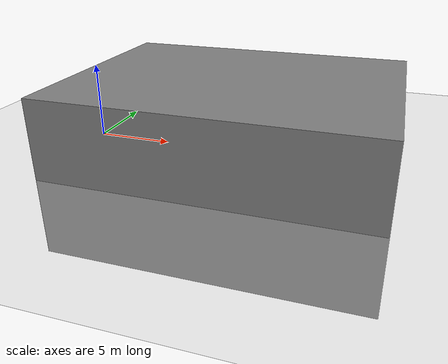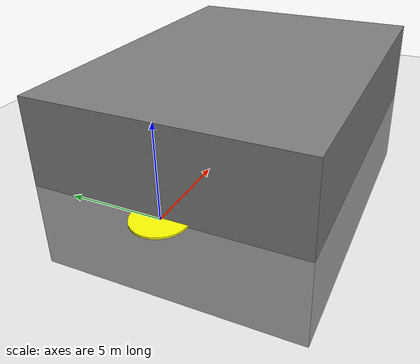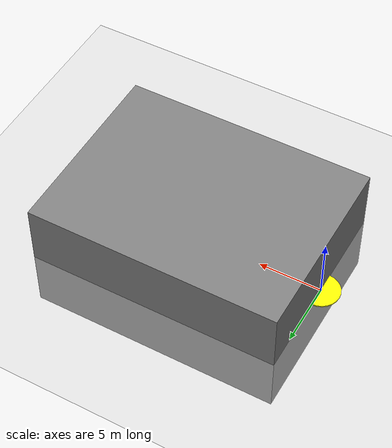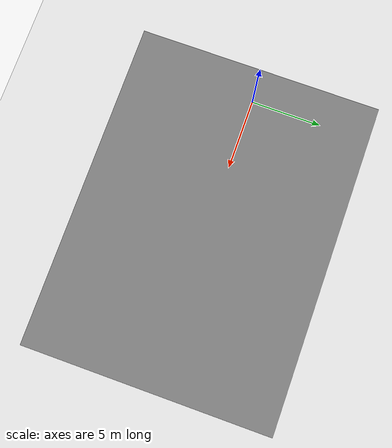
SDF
<?xml version="1.0"?>
<sdf version="1.6">
  <world name="drone_inspection_arena">

    <!-- Physics -->
    <physics type="ode">
      <real_time_update_rate>1000</real_time_update_rate>
      <max_step_size>0.001</max_step_size>
    </physics>

    <!-- Scene -->
    <scene>
      <ambient>0.4 0.4 0.4 1</ambient>
      <background>0.7 0.7 0.7 1</background>
      <shadows>true</shadows>
    </scene>

    <!-- Ground Plane -->
    <include>
      <uri>model://ground_plane</uri>
    </include>

    <!-- Sun -->
    <include>
      <uri>model://sun</uri>
    </include>

    <!-- Inspection Building -->
    <model name="inspection_building">
      <static>true</static>
      <pose>10 0 0 0 0 0</pose>
      <link name="building_link">
        <collision name="building_collision">
          <geometry>
            <box>
              <size>20 15 10</size>
            </box>
          </geometry>
        </collision>
        <visual name="building_visual">
          <geometry>
            <box>
              <size>20 15 10</size>
            </box>
          </geometry>
          <material>
            <ambient>0.5 0.5 0.5 1</ambient>
            <diffuse>0.5 0.5 0.5 1</diffuse>
          </material>
        </visual>
      </link>
    </model>

    <!-- Landing Pad -->
    <model name="landing_pad">
      <static>true</static>
      <pose>0 0 0.05 0 0 0</pose>
      <link name="pad_link">
        <collision name="pad_collision">
          <geometry>
            <cylinder>
              <radius>1.5</radius>
              <length>0.1</length>
            </cylinder>
          </geometry>
        </collision>
        <visual name="pad_visual">
          <geometry>
            <cylinder>
              <radius>1.5</radius>
              <length>0.1</length>
            </cylinder>
          </geometry>
          <material>
            <ambient>1 1 0 1</ambient>
            <diffuse>1 1 0 1</diffuse>
          </material>
        </visual>
      </link>
    </model>

    <!-- Obstacles -->
    <model name="obstacle_1">
      <static>true</static>
      <pose>5 3 2 0 0 0</pose>
      <link name="obstacle_link">
        <collision name="obstacle_collision">
          <geometry>
            <box>
              <size>2 2 4</size>
            </box>
          </geometry>
        </collision>
        <visual name="obstacle_visual">
          <geometry>
            <box>
              <size>2 2 4</size>
            </box>
          </geometry>
          <material>
            <ambient>1 0 0 1</ambient>
            <diffuse>1 0 0 1</diffuse>
          </material>
        </visual>
      </link>
    </model>

    <model name="obstacle_2">
      <static>true</static>
      <pose>7 -2 1.5 0 0 0</pose>
      <link name="obstacle_link">
        <collision name="obstacle_collision">
          <geometry>
            <cylinder>
              <radius>1.0</radius>
              <length>3.0</length>
            </cylinder>
          </geometry>
        </collision>
        <visual name="obstacle_visual">
          <geometry>
            <cylinder>
              <radius>1.0</radius>
              <length>3.0</length>
            </cylinder>
          </geometry>
          <material>
            <ambient>0 1 0 1</ambient>
            <diffuse>0 1 0 1</diffuse>
          </material>
        </visual>
      </link>
    </model>

    <!-- Navigation Gates -->
    <model name="gate_1">
      <static>true</static>
      <pose>3 0 3 0 0 0</pose>
      <link name="gate_link">
        <visual name="gate_visual">
          <geometry>
            <box>
              <size>0.1 2.0 2.0</size>
            </box>
          </geometry>
          <material>
            <ambient>0 0 1 0.5</ambient>
            <diffuse>0 0 1 0.5</diffuse>
          </material>
        </visual>
      </link>
    </model>

    <!-- Wind Plugin -->
    <plugin name="wind_plugin" filename="libgazebo_ros_wind.so">
      <topic>/drone/wind</topic>
      <windVelocityMean>5.0</windVelocityMean>
      <windVelocityMax>10.0</windVelocityMax>
      <windDirectionMean>0 1 0</windDirectionMean>
    </plugin>

  </world>
</sdf>
